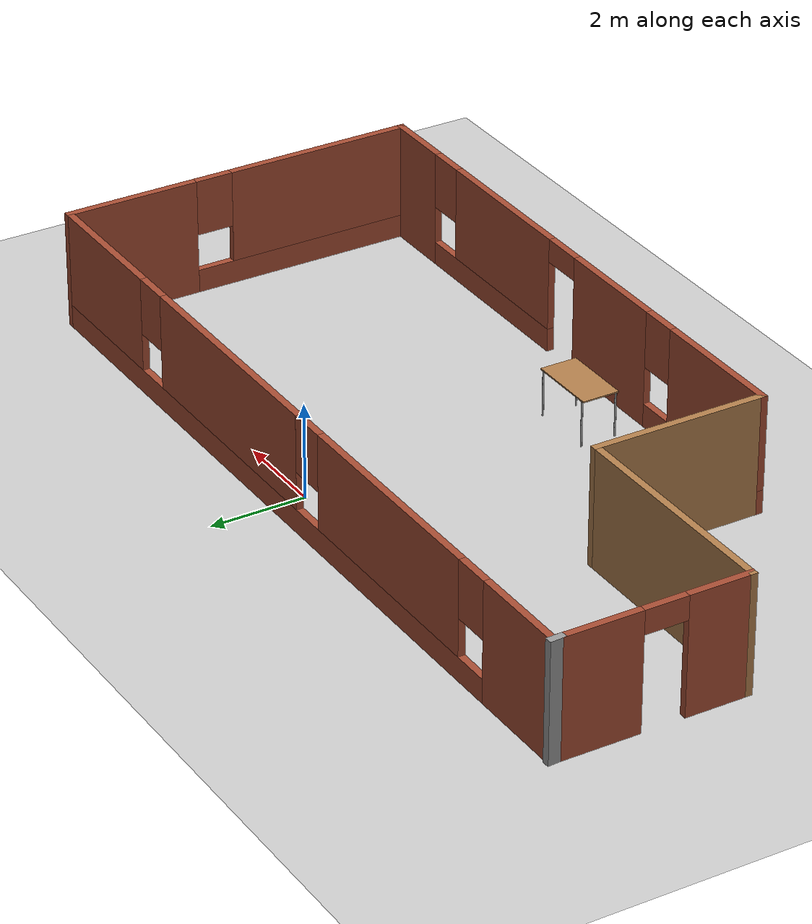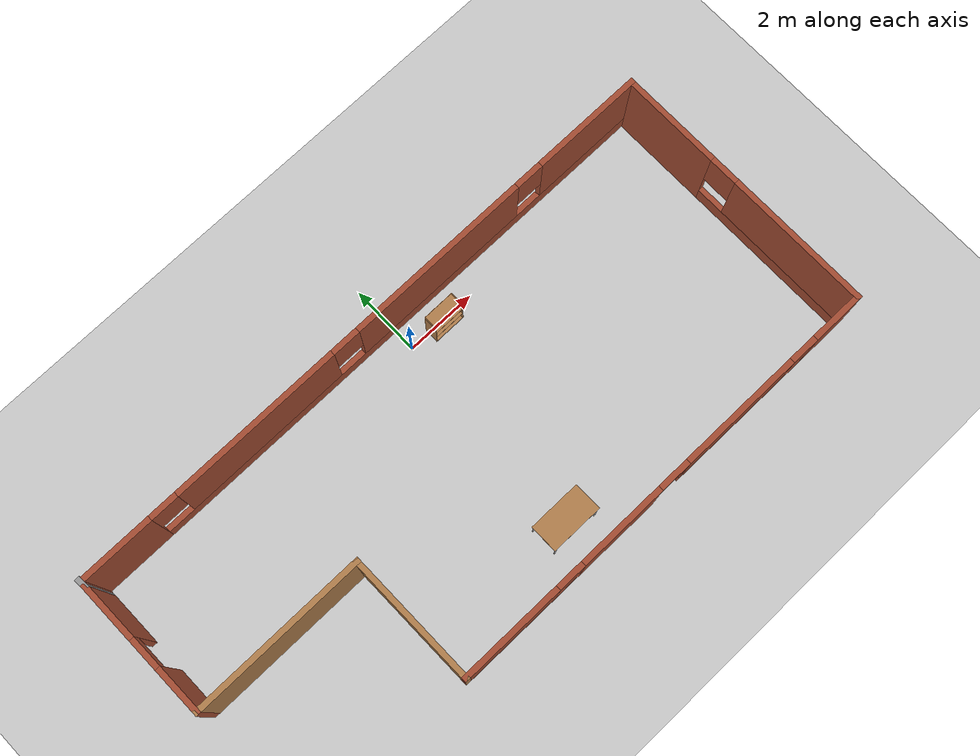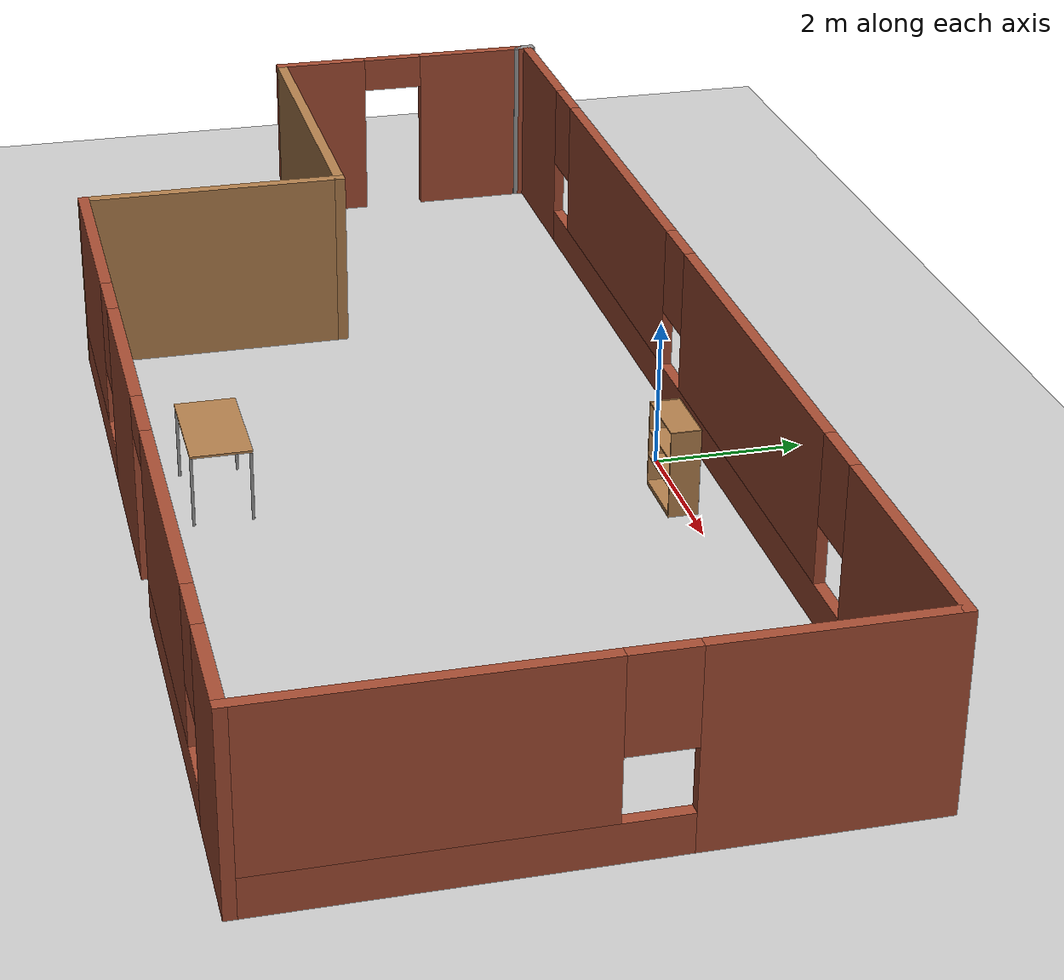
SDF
<sdf version="1.6">
 <world name="default">
  <model name="ground_plane">
   <static>1</static>
   <link name="link">
    <collision name="collision">
     <geometry><plane><normal>0 0 1</normal><size>100 100</size></plane></geometry>
     <surface>
      <contact><collide_bitmask>65535</collide_bitmask></contact>
      <friction><ode><mu>100</mu><mu2>50</mu2></ode></friction>
     </surface>
    </collision>
    <visual name="visual">
     <cast_shadows>0</cast_shadows>
     <geometry><plane><normal>0 0 1</normal><size>100 100</size></plane></geometry>
     <material>
      <script><uri>file://media/materials/scripts/gazebo.material</uri><name>Gazebo/Grey</name></script>
     </material>
    </visual>
   </link>
  </model>
  <model name="building">
   <pose>-0.710805 -3.10027 0 0 -0 0</pose>
   <link name="Wall_0">
    <pose>0.057851 3.7776 0 0 -0 0</pose>
    <visual name="Wall_0_Visual_0">
     <pose>-7.84406 0 1.25 0 -0 0</pose>
     <geometry><box><size>2.06188 0.15 2.5</size></box></geometry>
     <material>
      <script><uri>file://media/materials/scripts/gazebo.material</uri><name>Gazebo/Bricks</name></script>
      <ambient>0.333333 0.666667 1 1</ambient>
     </material>
     <meta><layer>0</layer></meta>
    </visual>
    <collision name="Wall_0_Collision_0">
     <geometry><box><size>2.06188 0.15 2.5</size></box></geometry>
     <pose>-7.84406 0 1.25 0 -0 0</pose>
    </collision>
    <visual name="Wall_0_Visual_1">
     <pose>1.03094 0 0.25 0 -0 0</pose>
     <geometry><box><size>15.6881 0.15 0.5</size></box></geometry>
     <material>
      <script><uri>file://media/materials/scripts/gazebo.material</uri><name>Gazebo/Bricks</name></script>
      <ambient>0.333333 0.666667 1 1</ambient>
     </material>
     <meta><layer>0</layer></meta>
    </visual>
    <collision name="Wall_0_Collision_1">
     <geometry><box><size>15.6881 0.15 0.5</size></box></geometry>
     <pose>1.03094 0 0.25 0 -0 0</pose>
    </collision>
    <visual name="Wall_0_Visual_2">
     <pose>-3.58123 0 1.5 0 -0 0</pose>
     <geometry><box><size>4.86378 0.15 2</size></box></geometry>
     <material>
      <script><uri>file://media/materials/scripts/gazebo.material</uri><name>Gazebo/Bricks</name></script>
      <ambient>0.333333 0.666667 1 1</ambient>
     </material>
     <meta><layer>0</layer></meta>
    </visual>
    <collision name="Wall_0_Collision_2">
     <geometry><box><size>4.86378 0.15 2</size></box></geometry>
     <pose>-3.58123 0 1.5 0 -0 0</pose>
    </collision>
    <visual name="Wall_0_Visual_3">
     <pose>2.2646 0 1.5 0 -0 0</pose>
     <geometry><box><size>5.22788 0.15 2</size></box></geometry>
     <material>
      <script><uri>file://media/materials/scripts/gazebo.material</uri><name>Gazebo/Bricks</name></script>
      <ambient>0.333333 0.666667 1 1</ambient>
     </material>
     <meta><layer>0</layer></meta>
    </visual>
    <collision name="Wall_0_Collision_3">
     <geometry><box><size>5.22788 0.15 2</size></box></geometry>
     <pose>2.2646 0 1.5 0 -0 0</pose>
    </collision>
    <visual name="Wall_0_Visual_4">
     <pose>7.27677 0 1.5 0 -0 0</pose>
     <geometry><box><size>3.19646 0.15 2</size></box></geometry>
     <material>
      <script><uri>file://media/materials/scripts/gazebo.material</uri><name>Gazebo/Bricks</name></script>
      <ambient>0.333333 0.666667 1 1</ambient>
     </material>
     <meta><layer>0</layer></meta>
    </visual>
    <collision name="Wall_0_Collision_4">
     <geometry><box><size>3.19646 0.15 2</size></box></geometry>
     <pose>7.27677 0 1.5 0 -0 0</pose>
    </collision>
    <visual name="Wall_0_Visual_5">
     <pose>-6.41312 0 1.9 0 -0 0</pose>
     <geometry><box><size>0.8 0.15 1.2</size></box></geometry>
     <material>
      <script><uri>file://media/materials/scripts/gazebo.material</uri><name>Gazebo/Bricks</name></script>
      <ambient>0.333333 0.666667 1 1</ambient>
     </material>
     <meta><layer>0</layer></meta>
    </visual>
    <collision name="Wall_0_Collision_5">
     <geometry><box><size>0.8 0.15 1.2</size></box></geometry>
     <pose>-6.41312 0 1.9 0 -0 0</pose>
    </collision>
    <visual name="Wall_0_Visual_6">
     <pose>-0.749341 0 1.9 0 -0 0</pose>
     <geometry><box><size>0.8 0.15 1.2</size></box></geometry>
     <material>
      <script><uri>file://media/materials/scripts/gazebo.material</uri><name>Gazebo/Bricks</name></script>
      <ambient>0.333333 0.666667 1 1</ambient>
     </material>
     <meta><layer>0</layer></meta>
    </visual>
    <collision name="Wall_0_Collision_6">
     <geometry><box><size>0.8 0.15 1.2</size></box></geometry>
     <pose>-0.749341 0 1.9 0 -0 0</pose>
    </collision>
    <visual name="Wall_0_Visual_7">
     <pose>5.27854 0 1.9 0 -0 0</pose>
     <geometry><box><size>0.8 0.15 1.2</size></box></geometry>
     <material>
      <script><uri>file://media/materials/scripts/gazebo.material</uri><name>Gazebo/Bricks</name></script>
      <ambient>0.333333 0.666667 1 1</ambient>
     </material>
     <meta><layer>0</layer></meta>
    </visual>
    <collision name="Wall_0_Collision_7">
     <geometry><box><size>0.8 0.15 1.2</size></box></geometry>
     <pose>5.27854 0 1.9 0 -0 0</pose>
    </collision>
   </link>
   <link name="Wall_1">
    <pose>8.85785 -0.022395 0 0 0 -1.5708</pose>
    <visual name="Wall_1_Visual_0">
     <pose>-2.43951 0 1.25 0 -0 0</pose>
     <geometry><box><size>2.87099 0.15 2.5</size></box></geometry>
     <material>
      <script><uri>file://media/materials/scripts/gazebo.material</uri><name>Gazebo/Bricks</name></script>
      <ambient>1 1 1 1</ambient>
     </material>
     <meta><layer>0</layer></meta>
    </visual>
    <collision name="Wall_1_Collision_0">
     <geometry><box><size>2.87099 0.15 2.5</size></box></geometry>
     <pose>-2.43951 0 1.25 0 -0 0</pose>
    </collision>
    <visual name="Wall_1_Visual_1">
     <pose>1.43549 0 0.25 0 -0 0</pose>
     <geometry><box><size>4.87901 0.15 0.5</size></box></geometry>
     <material>
      <script><uri>file://media/materials/scripts/gazebo.material</uri><name>Gazebo/Bricks</name></script>
      <ambient>1 1 1 1</ambient>
     </material>
     <meta><layer>0</layer></meta>
    </visual>
    <collision name="Wall_1_Collision_1">
     <geometry><box><size>4.87901 0.15 0.5</size></box></geometry>
     <pose>1.43549 0 0.25 0 -0 0</pose>
    </collision>
    <visual name="Wall_1_Visual_2">
     <pose>1.8355 0 1.5 0 -0 0</pose>
     <geometry><box><size>4.07901 0.15 2</size></box></geometry>
     <material>
      <script><uri>file://media/materials/scripts/gazebo.material</uri><name>Gazebo/Bricks</name></script>
      <ambient>1 1 1 1</ambient>
     </material>
     <meta><layer>0</layer></meta>
    </visual>
    <collision name="Wall_1_Collision_2">
     <geometry><box><size>4.07901 0.15 2</size></box></geometry>
     <pose>1.8355 0 1.5 0 -0 0</pose>
    </collision>
    <visual name="Wall_1_Visual_3">
     <pose>-0.604009 0 1.9 0 -0 0</pose>
     <geometry><box><size>0.8 0.15 1.2</size></box></geometry>
     <material>
      <script><uri>file://media/materials/scripts/gazebo.material</uri><name>Gazebo/Bricks</name></script>
      <ambient>1 1 1 1</ambient>
     </material>
     <meta><layer>0</layer></meta>
    </visual>
    <collision name="Wall_1_Collision_3">
     <geometry><box><size>0.8 0.15 1.2</size></box></geometry>
     <pose>-0.604009 0 1.9 0 -0 0</pose>
    </collision>
   </link>
   <link name="Wall_10">
    <pose>-8.84215 1.7026 0 0 -0 1.5708</pose>
    <visual name="Wall_10_Visual_0">
     <pose>-1.30003 0 1.25 0 -0 0</pose>
     <geometry><box><size>1.39994 0.15 2.5</size></box></geometry>
     <material>
      <script><uri>file://media/materials/scripts/gazebo.material</uri><name>Gazebo/Bricks</name></script>
      <ambient>1 1 1 1</ambient>
     </material>
     <meta><layer>0</layer></meta>
    </visual>
    <collision name="Wall_10_Collision_0">
     <geometry><box><size>1.39994 0.15 2.5</size></box></geometry>
     <pose>-1.30003 0 1.25 0 -0 0</pose>
    </collision>
    <visual name="Wall_10_Visual_1">
     <pose>1.14997 0 1.25 0 -0 0</pose>
     <geometry><box><size>1.70006 0.15 2.5</size></box></geometry>
     <material>
      <script><uri>file://media/materials/scripts/gazebo.material</uri><name>Gazebo/Bricks</name></script>
      <ambient>1 1 1 1</ambient>
     </material>
     <meta><layer>0</layer></meta>
    </visual>
    <collision name="Wall_10_Collision_1">
     <geometry><box><size>1.70006 0.15 2.5</size></box></geometry>
     <pose>1.14997 0 1.25 0 -0 0</pose>
    </collision>
    <visual name="Wall_10_Visual_2">
     <pose>-0.150057 0 2.25 0 -0 0</pose>
     <geometry><box><size>0.9 0.15 0.5</size></box></geometry>
     <material>
      <script><uri>file://media/materials/scripts/gazebo.material</uri><name>Gazebo/Bricks</name></script>
      <ambient>1 1 1 1</ambient>
     </material>
     <meta><layer>0</layer></meta>
    </visual>
    <collision name="Wall_10_Collision_2">
     <geometry><box><size>0.9 0.15 0.5</size></box></geometry>
     <pose>-0.150057 0 2.25 0 -0 0</pose>
    </collision>
   </link>
   <link name="Wall_13">
    <collision name="Wall_13_Collision">
     <geometry><box><size>0.340794 0.15 2.5</size></box></geometry>
     <pose>0 0 1.25 0 -0 0</pose>
    </collision>
    <visual name="Wall_13_Visual">
     <pose>0 0 1.25 0 -0 0</pose>
     <geometry><box><size>0.340794 0.15 2.5</size></box></geometry>
     <material>
      <script><uri>file://media/materials/scripts/gazebo.material</uri><name>Gazebo/Grey</name></script>
      <ambient>1 1 1 1</ambient>
     </material>
     <meta><layer>0</layer></meta>
    </visual>
    <pose>-8.84783 3.72283 0 0 -0 1.63041</pose>
   </link>
   <link name="Wall_2">
    <pose>2.43285 -3.8224 0 0 -0 3.14159</pose>
    <visual name="Wall_2_Visual_0">
     <pose>-5.73111 0 1.25 0 -0 0</pose>
     <geometry><box><size>1.53778 0.15 2.5</size></box></geometry>
     <material>
      <script><uri>file://media/materials/scripts/gazebo.material</uri><name>Gazebo/Bricks</name></script>
      <ambient>1 1 1 1</ambient>
     </material>
     <meta><layer>0</layer></meta>
    </visual>
    <collision name="Wall_2_Collision_0">
     <geometry><box><size>1.53778 0.15 2.5</size></box></geometry>
     <pose>-5.73111 0 1.25 0 -0 0</pose>
    </collision>
    <visual name="Wall_2_Visual_1">
     <pose>1.47043 0 1.25 0 -0 0</pose>
     <geometry><box><size>2.50781 0.15 2.5</size></box></geometry>
     <material>
      <script><uri>file://media/materials/scripts/gazebo.material</uri><name>Gazebo/Bricks</name></script>
      <ambient>1 1 1 1</ambient>
     </material>
     <meta><layer>0</layer></meta>
    </visual>
    <collision name="Wall_2_Collision_1">
     <geometry><box><size>2.50781 0.15 2.5</size></box></geometry>
     <pose>1.47043 0 1.25 0 -0 0</pose>
    </collision>
    <visual name="Wall_2_Visual_2">
     <pose>-2.82285 0 0.25 0 -0 0</pose>
     <geometry><box><size>4.27875 0.15 0.5</size></box></geometry>
     <material>
      <script><uri>file://media/materials/scripts/gazebo.material</uri><name>Gazebo/Bricks</name></script>
      <ambient>1 1 1 1</ambient>
     </material>
     <meta><layer>0</layer></meta>
    </visual>
    <collision name="Wall_2_Collision_2">
     <geometry><box><size>4.27875 0.15 0.5</size></box></geometry>
     <pose>-2.82285 0 0.25 0 -0 0</pose>
    </collision>
    <visual name="Wall_2_Visual_3">
     <pose>4.61217 0 0.25 0 -0 0</pose>
     <geometry><box><size>3.77566 0.15 0.5</size></box></geometry>
     <material>
      <script><uri>file://media/materials/scripts/gazebo.material</uri><name>Gazebo/Bricks</name></script>
      <ambient>1 1 1 1</ambient>
     </material>
     <meta><layer>0</layer></meta>
    </visual>
    <collision name="Wall_2_Collision_3">
     <geometry><box><size>3.77566 0.15 0.5</size></box></geometry>
     <pose>4.61217 0 0.25 0 -0 0</pose>
    </collision>
    <visual name="Wall_2_Visual_4">
     <pose>-2.42285 0 1.5 0 -0 0</pose>
     <geometry><box><size>3.47875 0.15 2</size></box></geometry>
     <material>
      <script><uri>file://media/materials/scripts/gazebo.material</uri><name>Gazebo/Bricks</name></script>
      <ambient>1 1 1 1</ambient>
     </material>
     <meta><layer>0</layer></meta>
    </visual>
    <collision name="Wall_2_Collision_4">
     <geometry><box><size>3.47875 0.15 2</size></box></geometry>
     <pose>-2.42285 0 1.5 0 -0 0</pose>
    </collision>
    <visual name="Wall_2_Visual_5">
     <pose>-2.42285 0 1.5 0 -0 0</pose>
     <geometry><box><size>3.47875 0.15 2</size></box></geometry>
     <material>
      <script><uri>file://media/materials/scripts/gazebo.material</uri><name>Gazebo/Bricks</name></script>
      <ambient>1 1 1 1</ambient>
     </material>
     <meta><layer>0</layer></meta>
    </visual>
    <collision name="Wall_2_Collision_5">
     <geometry><box><size>3.47875 0.15 2</size></box></geometry>
     <pose>-2.42285 0 1.5 0 -0 0</pose>
    </collision>
    <visual name="Wall_2_Visual_6">
     <pose>5.01217 0 1.5 0 -0 0</pose>
     <geometry><box><size>2.97566 0.15 2</size></box></geometry>
     <material>
      <script><uri>file://media/materials/scripts/gazebo.material</uri><name>Gazebo/Bricks</name></script>
      <ambient>1 1 1 1</ambient>
     </material>
     <meta><layer>0</layer></meta>
    </visual>
    <collision name="Wall_2_Collision_6">
     <geometry><box><size>2.97566 0.15 2</size></box></geometry>
     <pose>5.01217 0 1.5 0 -0 0</pose>
    </collision>
    <visual name="Wall_2_Visual_7">
     <pose>-4.56222 0 1.9 0 -0 0</pose>
     <geometry><box><size>0.8 0.15 1.2</size></box></geometry>
     <material>
      <script><uri>file://media/materials/scripts/gazebo.material</uri><name>Gazebo/Bricks</name></script>
      <ambient>1 1 1 1</ambient>
     </material>
     <meta><layer>0</layer></meta>
    </visual>
    <collision name="Wall_2_Collision_7">
     <geometry><box><size>0.8 0.15 1.2</size></box></geometry>
     <pose>-4.56222 0 1.9 0 -0 0</pose>
    </collision>
    <visual name="Wall_2_Visual_8">
     <pose>3.12434 0 1.9 0 -0 0</pose>
     <geometry><box><size>0.8 0.15 1.2</size></box></geometry>
     <material>
      <script><uri>file://media/materials/scripts/gazebo.material</uri><name>Gazebo/Bricks</name></script>
      <ambient>1 1 1 1</ambient>
     </material>
     <meta><layer>0</layer></meta>
    </visual>
    <collision name="Wall_2_Collision_8">
     <geometry><box><size>0.8 0.15 1.2</size></box></geometry>
     <pose>3.12434 0 1.9 0 -0 0</pose>
    </collision>
    <visual name="Wall_2_Visual_9">
     <pose>-0.233473 0 2.25 0 -0 0</pose>
     <geometry><box><size>0.9 0.15 0.5</size></box></geometry>
     <material>
      <script><uri>file://media/materials/scripts/gazebo.material</uri><name>Gazebo/Bricks</name></script>
      <ambient>1 1 1 1</ambient>
     </material>
     <meta><layer>0</layer></meta>
    </visual>
    <collision name="Wall_2_Collision_9">
     <geometry><box><size>0.9 0.15 0.5</size></box></geometry>
     <pose>-0.233473 0 2.25 0 -0 0</pose>
    </collision>
    <visual name="Wall_2_Visual_10">
     <pose>-0.233473 0 2.25 0 -0 0</pose>
     <geometry><box><size>0.9 0.15 0.5</size></box></geometry>
     <material>
      <script><uri>file://media/materials/scripts/gazebo.material</uri><name>Gazebo/Bricks</name></script>
      <ambient>1 1 1 1</ambient>
     </material>
     <meta><layer>0</layer></meta>
    </visual>
    <collision name="Wall_2_Collision_10">
     <geometry><box><size>0.9 0.15 0.5</size></box></geometry>
     <pose>-0.233473 0 2.25 0 -0 0</pose>
    </collision>
   </link>
   <link name="Wall_3">
    <collision name="Wall_3_Collision">
     <geometry><box><size>3.75 0.15 2.5</size></box></geometry>
     <pose>0 0 1.25 0 -0 0</pose>
    </collision>
    <visual name="Wall_3_Visual">
     <pose>0 0 1.25 0 -0 0</pose>
     <geometry><box><size>3.75 0.15 2.5</size></box></geometry>
     <material>
      <script><uri>file://media/materials/scripts/gazebo.material</uri><name>Gazebo/Wood</name></script>
      <ambient>1 1 1 1</ambient>
     </material>
     <meta><layer>0</layer></meta>
    </visual>
    <pose>-3.99215 -2.02239 0 0 -0 1.5708</pose>
   </link>
   <link name="Wall_4">
    <collision name="Wall_4_Collision">
     <geometry><box><size>5 0.15 2.5</size></box></geometry>
     <pose>0 0 1.25 0 -0 0</pose>
    </collision>
    <visual name="Wall_4_Visual">
     <pose>0 0 1.25 0 -0 0</pose>
     <geometry><box><size>5 0.15 2.5</size></box></geometry>
     <material>
      <script><uri>file://media/materials/scripts/gazebo.material</uri><name>Gazebo/Wood</name></script>
      <ambient>1 1 1 1</ambient>
     </material>
     <meta><layer>0</layer></meta>
    </visual>
    <pose>-6.41715 -0.222395 0 0 -0 3.14159</pose>
   </link>
   <static>1</static>
  </model>
  <model name="bookshelf_0">
   <static>1</static>
   <link name="link">
    <inertial><mass>1</mass></inertial>
    <collision name="back">
     <pose>0 0.005 0.6 0 -0 0</pose>
     <geometry><box><size>0.9 0.01 1.2</size></box></geometry>
    </collision>
    <visual name="visual1">
     <pose>0 0.005 0.6 0 -0 0</pose>
     <geometry><box><size>0.9 0.01 1.2</size></box></geometry>
     <material>
      <script><uri>file://media/materials/scripts/gazebo.material</uri><name>Gazebo/Wood</name></script>
     </material>
    </visual>
    <collision name="left_side">
     <pose>0.45 -0.195 0.6 0 -0 0</pose>
     <geometry><box><size>0.02 0.4 1.2</size></box></geometry>
    </collision>
    <visual name="visual2">
     <pose>0.45 -0.195 0.6 0 -0 0</pose>
     <geometry><box><size>0.02 0.4 1.2</size></box></geometry>
     <material>
      <script><uri>file://media/materials/scripts/gazebo.material</uri><name>Gazebo/Wood</name></script>
     </material>
    </visual>
    <collision name="right_side">
     <pose>-0.45 -0.195 0.6 0 -0 0</pose>
     <geometry><box><size>0.02 0.4 1.2</size></box></geometry>
    </collision>
    <visual name="visual3">
     <pose>-0.45 -0.195 0.6 0 -0 0</pose>
     <geometry><box><size>0.02 0.4 1.2</size></box></geometry>
     <material>
      <script><uri>file://media/materials/scripts/gazebo.material</uri><name>Gazebo/Wood</name></script>
     </material>
    </visual>
    <collision name="bottom">
     <pose>0 -0.195 0.03 0 -0 0</pose>
     <geometry><box><size>0.88 0.4 0.06</size></box></geometry>
    </collision>
    <visual name="visual4">
     <pose>0 -0.195 0.03 0 -0 0</pose>
     <geometry><box><size>0.88 0.4 0.06</size></box></geometry>
     <material>
      <script><uri>file://media/materials/scripts/gazebo.material</uri><name>Gazebo/Wood</name></script>
     </material>
    </visual>
    <collision name="top">
     <pose>0 -0.195 1.19 0 -0 0</pose>
     <geometry><box><size>0.88 0.4 0.02</size></box></geometry>
    </collision>
    <visual name="visual5">
     <pose>0 -0.195 1.19 0 -0 0</pose>
     <geometry><box><size>0.88 0.4 0.02</size></box></geometry>
     <material>
      <script><uri>file://media/materials/scripts/gazebo.material</uri><name>Gazebo/Wood</name></script>
     </material>
    </visual>
    <collision name="low_shelf">
     <pose>0 -0.195 0.43 0 -0 0</pose>
     <geometry><box><size>0.88 0.4 0.02</size></box></geometry>
    </collision>
    <visual name="visual6">
     <pose>0 -0.195 0.43 0 -0 0</pose>
     <geometry><box><size>0.88 0.4 0.02</size></box></geometry>
     <material>
      <script><uri>file://media/materials/scripts/gazebo.material</uri><name>Gazebo/Wood</name></script>
     </material>
    </visual>
    <collision name="high_shelf">
     <pose>0 -0.195 0.8 0 -0 0</pose>
     <geometry><box><size>0.88 0.4 0.02</size></box></geometry>
    </collision>
    <visual name="visual7">
     <pose>0 -0.195 0.8 0 -0 0</pose>
     <geometry><box><size>0.88 0.4 0.02</size></box></geometry>
     <material>
      <script><uri>file://media/materials/scripts/gazebo.material</uri><name>Gazebo/Wood</name></script>
     </material>
    </visual>
   </link>
   <pose>1.02562 0.093356 0 0 -0 0</pose>
  </model>
  <model name="table">
   <static>1</static>
   <link name="link">
    <collision name="surface">
     <pose>0 0 1 0 -0 0</pose>
     <geometry><box><size>1.5 0.8 0.03</size></box></geometry>
     <surface><friction><ode><mu>0.6</mu><mu2>0.6</mu2></ode></friction></surface>
    </collision>
    <visual name="visual1">
     <pose>0 0 1 0 -0 0</pose>
     <geometry><box><size>1.5 0.8 0.03</size></box></geometry>
     <material>
      <script><uri>file://media/materials/scripts/gazebo.material</uri><name>Gazebo/Wood</name></script>
     </material>
    </visual>
    <collision name="front_left_leg">
     <pose>0.68 0.38 0.5 0 -0 0</pose>
     <geometry><cylinder><radius>0.02</radius><length>1</length></cylinder></geometry>
    </collision>
    <visual name="front_left_leg">
     <pose>0.68 0.38 0.5 0 -0 0</pose>
     <geometry><cylinder><radius>0.02</radius><length>1</length></cylinder></geometry>
     <material>
      <script><uri>file://media/materials/scripts/gazebo.material</uri><name>Gazebo/Grey</name></script>
     </material>
    </visual>
    <collision name="front_right_leg">
     <pose>0.68 -0.38 0.5 0 -0 0</pose>
     <geometry><cylinder><radius>0.02</radius><length>1</length></cylinder></geometry>
    </collision>
    <visual name="front_right_leg">
     <pose>0.68 -0.38 0.5 0 -0 0</pose>
     <geometry><cylinder><radius>0.02</radius><length>1</length></cylinder></geometry>
     <material>
      <script><uri>file://media/materials/scripts/gazebo.material</uri><name>Gazebo/Grey</name></script>
     </material>
    </visual>
    <collision name="back_right_leg">
     <pose>-0.68 -0.38 0.5 0 -0 0</pose>
     <geometry><cylinder><radius>0.02</radius><length>1</length></cylinder></geometry>
    </collision>
    <visual name="back_right_leg">
     <pose>-0.68 -0.38 0.5 0 -0 0</pose>
     <geometry><cylinder><radius>0.02</radius><length>1</length></cylinder></geometry>
     <material>
      <script><uri>file://media/materials/scripts/gazebo.material</uri><name>Gazebo/Grey</name></script>
     </material>
    </visual>
    <collision name="back_left_leg">
     <pose>-0.68 0.38 0.5 0 -0 0</pose>
     <geometry><cylinder><radius>0.02</radius><length>1</length></cylinder></geometry>
    </collision>
    <visual name="back_left_leg">
     <pose>-0.68 0.38 0.5 0 -0 0</pose>
     <geometry><cylinder><radius>0.02</radius><length>1</length></cylinder></geometry>
     <material>
      <script><uri>file://media/materials/scripts/gazebo.material</uri><name>Gazebo/Grey</name></script>
     </material>
    </visual>
   </link>
   <pose>-0.355201 -5.80955 0 0 -0 0</pose>
  </model>
 </world>
</sdf>
